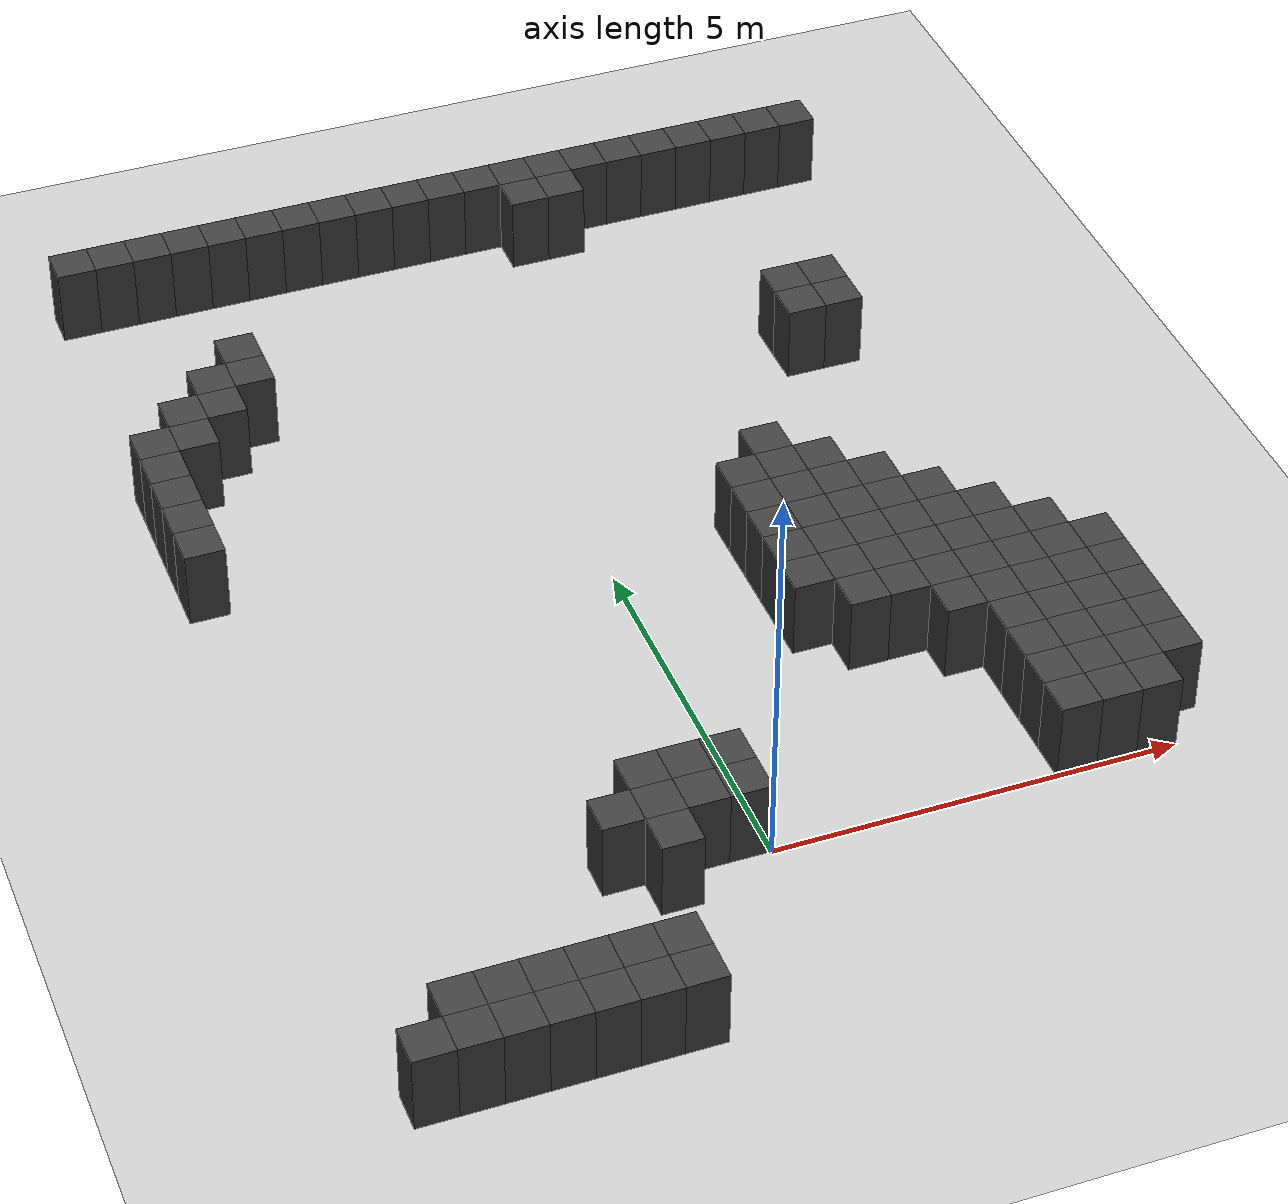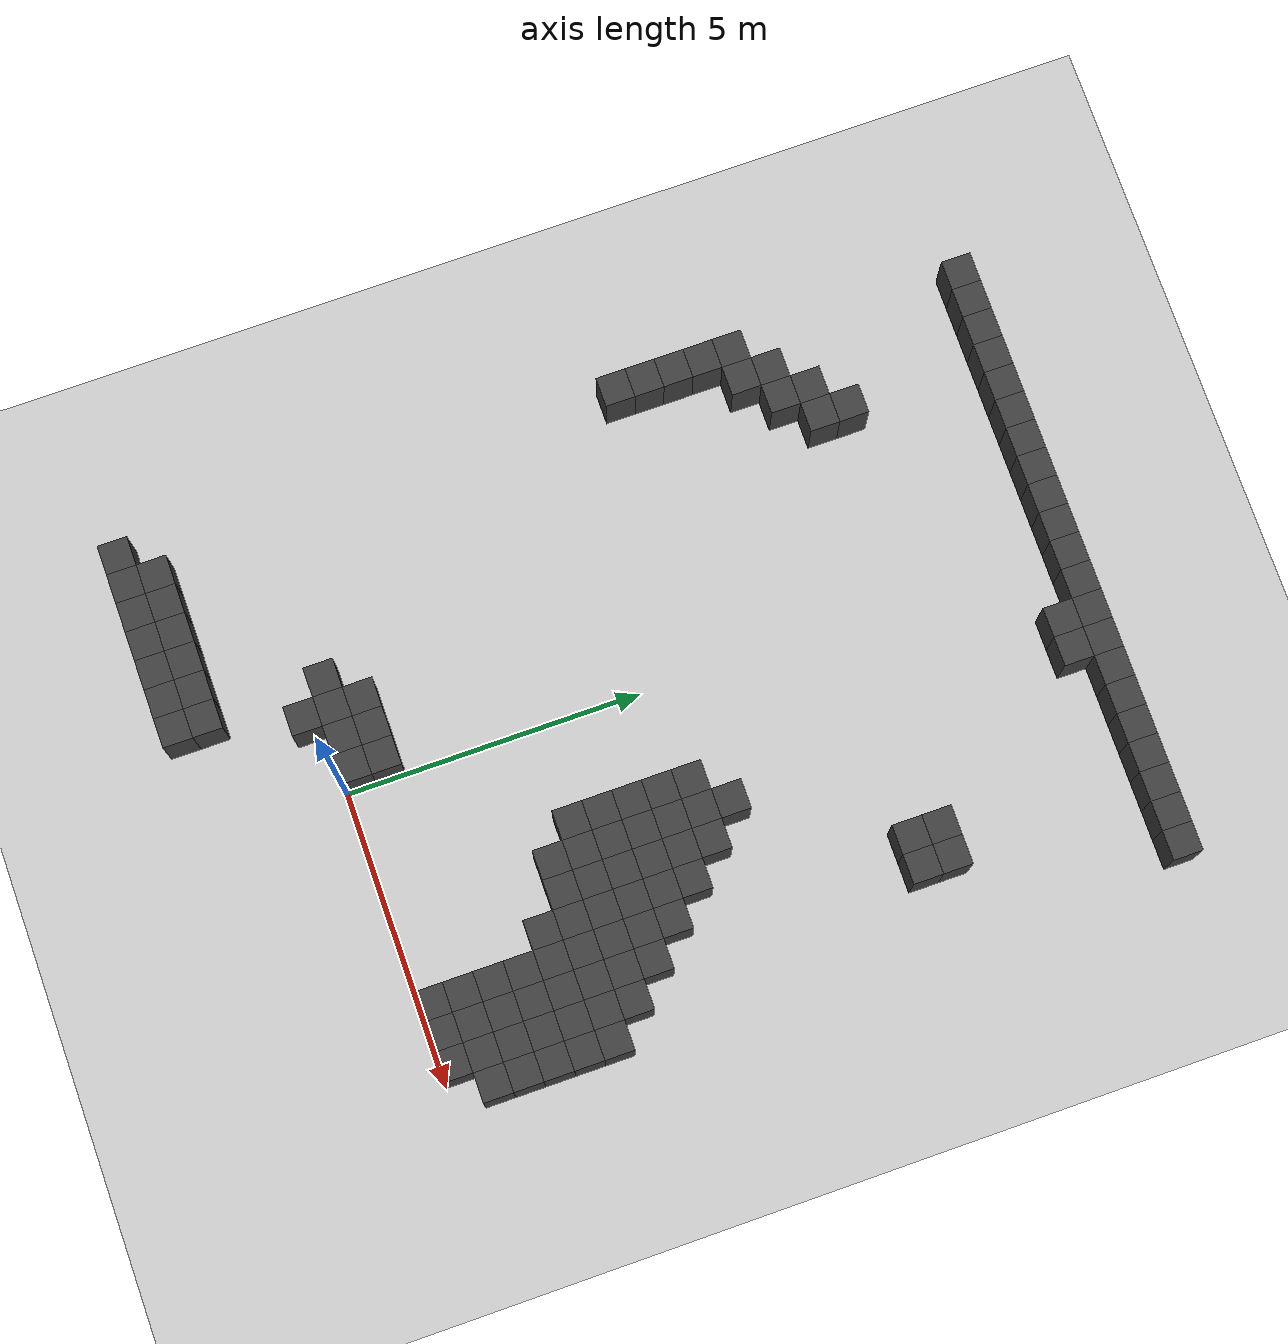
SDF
<sdf version="1.7">
 <world name="map_7219">
  <model name="ground_plane">
   <static>true</static>
   <link name="link">
    <collision name="collision">
     <geometry><plane><normal>0 0 1</normal><size>200 200</size></plane></geometry>
    </collision>
    <visual name="visual">
     <geometry><plane><normal>0 0 1</normal><size>200 200</size></plane></geometry>
     <material><ambient>0.8 0.8 0.8 1</ambient><diffuse>0.8 0.8 0.8 1</diffuse></material>
    </visual>
   </link>
  </model>
  <model name="maze_environment">
   <static>true</static>
   <link name="wall_15">
    <pose>-4.750 12.250 0.500 0 0 0</pose>
    <collision name="col"><geometry><box><size>0.5 0.5 1.0</size></box></geometry></collision>
    <visual name="vis">
     <geometry><box><size>0.5 0.5 1.0</size></box></geometry>
     <material><ambient>0.15 0.15 0.15 1</ambient><diffuse>0.25 0.25 0.25 1</diffuse></material>
    </visual>
   </link>
   <link name="wall_16">
    <pose>-4.250 12.250 0.500 0 0 0</pose>
    <collision name="col"><geometry><box><size>0.5 0.5 1.0</size></box></geometry></collision>
    <visual name="vis">
     <geometry><box><size>0.5 0.5 1.0</size></box></geometry>
     <material><ambient>0.15 0.15 0.15 1</ambient><diffuse>0.25 0.25 0.25 1</diffuse></material>
    </visual>
   </link>
   <link name="wall_17">
    <pose>-3.750 12.250 0.500 0 0 0</pose>
    <collision name="col"><geometry><box><size>0.5 0.5 1.0</size></box></geometry></collision>
    <visual name="vis">
     <geometry><box><size>0.5 0.5 1.0</size></box></geometry>
     <material><ambient>0.15 0.15 0.15 1</ambient><diffuse>0.25 0.25 0.25 1</diffuse></material>
    </visual>
   </link>
   <link name="wall_18">
    <pose>-3.250 12.250 0.500 0 0 0</pose>
    <collision name="col"><geometry><box><size>0.5 0.5 1.0</size></box></geometry></collision>
    <visual name="vis">
     <geometry><box><size>0.5 0.5 1.0</size></box></geometry>
     <material><ambient>0.15 0.15 0.15 1</ambient><diffuse>0.25 0.25 0.25 1</diffuse></material>
    </visual>
   </link>
   <link name="wall_19">
    <pose>-2.750 12.250 0.500 0 0 0</pose>
    <collision name="col"><geometry><box><size>0.5 0.5 1.0</size></box></geometry></collision>
    <visual name="vis">
     <geometry><box><size>0.5 0.5 1.0</size></box></geometry>
     <material><ambient>0.15 0.15 0.15 1</ambient><diffuse>0.25 0.25 0.25 1</diffuse></material>
    </visual>
   </link>
   <link name="wall_20">
    <pose>-2.250 12.250 0.500 0 0 0</pose>
    <collision name="col"><geometry><box><size>0.5 0.5 1.0</size></box></geometry></collision>
    <visual name="vis">
     <geometry><box><size>0.5 0.5 1.0</size></box></geometry>
     <material><ambient>0.15 0.15 0.15 1</ambient><diffuse>0.25 0.25 0.25 1</diffuse></material>
    </visual>
   </link>
   <link name="wall_21">
    <pose>-1.750 12.250 0.500 0 0 0</pose>
    <collision name="col"><geometry><box><size>0.5 0.5 1.0</size></box></geometry></collision>
    <visual name="vis">
     <geometry><box><size>0.5 0.5 1.0</size></box></geometry>
     <material><ambient>0.15 0.15 0.15 1</ambient><diffuse>0.25 0.25 0.25 1</diffuse></material>
    </visual>
   </link>
   <link name="wall_22">
    <pose>-1.250 12.250 0.500 0 0 0</pose>
    <collision name="col"><geometry><box><size>0.5 0.5 1.0</size></box></geometry></collision>
    <visual name="vis">
     <geometry><box><size>0.5 0.5 1.0</size></box></geometry>
     <material><ambient>0.15 0.15 0.15 1</ambient><diffuse>0.25 0.25 0.25 1</diffuse></material>
    </visual>
   </link>
   <link name="wall_23">
    <pose>-0.750 12.250 0.500 0 0 0</pose>
    <collision name="col"><geometry><box><size>0.5 0.5 1.0</size></box></geometry></collision>
    <visual name="vis">
     <geometry><box><size>0.5 0.5 1.0</size></box></geometry>
     <material><ambient>0.15 0.15 0.15 1</ambient><diffuse>0.25 0.25 0.25 1</diffuse></material>
    </visual>
   </link>
   <link name="wall_24">
    <pose>-0.250 12.250 0.500 0 0 0</pose>
    <collision name="col"><geometry><box><size>0.5 0.5 1.0</size></box></geometry></collision>
    <visual name="vis">
     <geometry><box><size>0.5 0.5 1.0</size></box></geometry>
     <material><ambient>0.15 0.15 0.15 1</ambient><diffuse>0.25 0.25 0.25 1</diffuse></material>
    </visual>
   </link>
   <link name="wall_25">
    <pose>0.250 12.250 0.500 0 0 0</pose>
    <collision name="col"><geometry><box><size>0.5 0.5 1.0</size></box></geometry></collision>
    <visual name="vis">
     <geometry><box><size>0.5 0.5 1.0</size></box></geometry>
     <material><ambient>0.15 0.15 0.15 1</ambient><diffuse>0.25 0.25 0.25 1</diffuse></material>
    </visual>
   </link>
   <link name="wall_26">
    <pose>0.750 12.250 0.500 0 0 0</pose>
    <collision name="col"><geometry><box><size>0.5 0.5 1.0</size></box></geometry></collision>
    <visual name="vis">
     <geometry><box><size>0.5 0.5 1.0</size></box></geometry>
     <material><ambient>0.15 0.15 0.15 1</ambient><diffuse>0.25 0.25 0.25 1</diffuse></material>
    </visual>
   </link>
   <link name="wall_27">
    <pose>1.250 12.250 0.500 0 0 0</pose>
    <collision name="col"><geometry><box><size>0.5 0.5 1.0</size></box></geometry></collision>
    <visual name="vis">
     <geometry><box><size>0.5 0.5 1.0</size></box></geometry>
     <material><ambient>0.15 0.15 0.15 1</ambient><diffuse>0.25 0.25 0.25 1</diffuse></material>
    </visual>
   </link>
   <link name="wall_28">
    <pose>1.750 12.250 0.500 0 0 0</pose>
    <collision name="col"><geometry><box><size>0.5 0.5 1.0</size></box></geometry></collision>
    <visual name="vis">
     <geometry><box><size>0.5 0.5 1.0</size></box></geometry>
     <material><ambient>0.15 0.15 0.15 1</ambient><diffuse>0.25 0.25 0.25 1</diffuse></material>
    </visual>
   </link>
   <link name="wall_29">
    <pose>2.250 12.250 0.500 0 0 0</pose>
    <collision name="col"><geometry><box><size>0.5 0.5 1.0</size></box></geometry></collision>
    <visual name="vis">
     <geometry><box><size>0.5 0.5 1.0</size></box></geometry>
     <material><ambient>0.15 0.15 0.15 1</ambient><diffuse>0.25 0.25 0.25 1</diffuse></material>
    </visual>
   </link>
   <link name="wall_30">
    <pose>2.750 12.250 0.500 0 0 0</pose>
    <collision name="col"><geometry><box><size>0.5 0.5 1.0</size></box></geometry></collision>
    <visual name="vis">
     <geometry><box><size>0.5 0.5 1.0</size></box></geometry>
     <material><ambient>0.15 0.15 0.15 1</ambient><diffuse>0.25 0.25 0.25 1</diffuse></material>
    </visual>
   </link>
   <link name="wall_31">
    <pose>3.250 12.250 0.500 0 0 0</pose>
    <collision name="col"><geometry><box><size>0.5 0.5 1.0</size></box></geometry></collision>
    <visual name="vis">
     <geometry><box><size>0.5 0.5 1.0</size></box></geometry>
     <material><ambient>0.15 0.15 0.15 1</ambient><diffuse>0.25 0.25 0.25 1</diffuse></material>
    </visual>
   </link>
   <link name="wall_32">
    <pose>3.750 12.250 0.500 0 0 0</pose>
    <collision name="col"><geometry><box><size>0.5 0.5 1.0</size></box></geometry></collision>
    <visual name="vis">
     <geometry><box><size>0.5 0.5 1.0</size></box></geometry>
     <material><ambient>0.15 0.15 0.15 1</ambient><diffuse>0.25 0.25 0.25 1</diffuse></material>
    </visual>
   </link>
   <link name="wall_33">
    <pose>4.250 12.250 0.500 0 0 0</pose>
    <collision name="col"><geometry><box><size>0.5 0.5 1.0</size></box></geometry></collision>
    <visual name="vis">
     <geometry><box><size>0.5 0.5 1.0</size></box></geometry>
     <material><ambient>0.15 0.15 0.15 1</ambient><diffuse>0.25 0.25 0.25 1</diffuse></material>
    </visual>
   </link>
   <link name="wall_34">
    <pose>4.750 12.250 0.500 0 0 0</pose>
    <collision name="col"><geometry><box><size>0.5 0.5 1.0</size></box></geometry></collision>
    <visual name="vis">
     <geometry><box><size>0.5 0.5 1.0</size></box></geometry>
     <material><ambient>0.15 0.15 0.15 1</ambient><diffuse>0.25 0.25 0.25 1</diffuse></material>
    </visual>
   </link>
   <link name="wall_35">
    <pose>5.250 12.250 0.500 0 0 0</pose>
    <collision name="col"><geometry><box><size>0.5 0.5 1.0</size></box></geometry></collision>
    <visual name="vis">
     <geometry><box><size>0.5 0.5 1.0</size></box></geometry>
     <material><ambient>0.15 0.15 0.15 1</ambient><diffuse>0.25 0.25 0.25 1</diffuse></material>
    </visual>
   </link>
   <link name="wall_57">
    <pose>1.250 11.750 0.500 0 0 0</pose>
    <collision name="col"><geometry><box><size>0.5 0.5 1.0</size></box></geometry></collision>
    <visual name="vis">
     <geometry><box><size>0.5 0.5 1.0</size></box></geometry>
     <material><ambient>0.15 0.15 0.15 1</ambient><diffuse>0.25 0.25 0.25 1</diffuse></material>
    </visual>
   </link>
   <link name="wall_58">
    <pose>1.750 11.750 0.500 0 0 0</pose>
    <collision name="col"><geometry><box><size>0.5 0.5 1.0</size></box></geometry></collision>
    <visual name="vis">
     <geometry><box><size>0.5 0.5 1.0</size></box></geometry>
     <material><ambient>0.15 0.15 0.15 1</ambient><diffuse>0.25 0.25 0.25 1</diffuse></material>
    </visual>
   </link>
   <link name="wall_85">
    <pose>-3.250 9.750 0.500 0 0 0</pose>
    <collision name="col"><geometry><box><size>0.5 0.5 1.0</size></box></geometry></collision>
    <visual name="vis">
     <geometry><box><size>0.5 0.5 1.0</size></box></geometry>
     <material><ambient>0.15 0.15 0.15 1</ambient><diffuse>0.25 0.25 0.25 1</diffuse></material>
    </visual>
   </link>
   <link name="wall_93">
    <pose>-3.750 9.250 0.500 0 0 0</pose>
    <collision name="col"><geometry><box><size>0.5 0.5 1.0</size></box></geometry></collision>
    <visual name="vis">
     <geometry><box><size>0.5 0.5 1.0</size></box></geometry>
     <material><ambient>0.15 0.15 0.15 1</ambient><diffuse>0.25 0.25 0.25 1</diffuse></material>
    </visual>
   </link>
   <link name="wall_94">
    <pose>-3.250 9.250 0.500 0 0 0</pose>
    <collision name="col"><geometry><box><size>0.5 0.5 1.0</size></box></geometry></collision>
    <visual name="vis">
     <geometry><box><size>0.5 0.5 1.0</size></box></geometry>
     <material><ambient>0.15 0.15 0.15 1</ambient><diffuse>0.25 0.25 0.25 1</diffuse></material>
    </visual>
   </link>
   <link name="wall_102">
    <pose>-4.250 8.750 0.500 0 0 0</pose>
    <collision name="col"><geometry><box><size>0.5 0.5 1.0</size></box></geometry></collision>
    <visual name="vis">
     <geometry><box><size>0.5 0.5 1.0</size></box></geometry>
     <material><ambient>0.15 0.15 0.15 1</ambient><diffuse>0.25 0.25 0.25 1</diffuse></material>
    </visual>
   </link>
   <link name="wall_103">
    <pose>-3.750 8.750 0.500 0 0 0</pose>
    <collision name="col"><geometry><box><size>0.5 0.5 1.0</size></box></geometry></collision>
    <visual name="vis">
     <geometry><box><size>0.5 0.5 1.0</size></box></geometry>
     <material><ambient>0.15 0.15 0.15 1</ambient><diffuse>0.25 0.25 0.25 1</diffuse></material>
    </visual>
   </link>
   <link name="wall_104">
    <pose>3.750 8.750 0.500 0 0 0</pose>
    <collision name="col"><geometry><box><size>0.5 0.5 1.0</size></box></geometry></collision>
    <visual name="vis">
     <geometry><box><size>0.5 0.5 1.0</size></box></geometry>
     <material><ambient>0.15 0.15 0.15 1</ambient><diffuse>0.25 0.25 0.25 1</diffuse></material>
    </visual>
   </link>
   <link name="wall_105">
    <pose>4.250 8.750 0.500 0 0 0</pose>
    <collision name="col"><geometry><box><size>0.5 0.5 1.0</size></box></geometry></collision>
    <visual name="vis">
     <geometry><box><size>0.5 0.5 1.0</size></box></geometry>
     <material><ambient>0.15 0.15 0.15 1</ambient><diffuse>0.25 0.25 0.25 1</diffuse></material>
    </visual>
   </link>
   <link name="wall_114">
    <pose>-4.750 8.250 0.500 0 0 0</pose>
    <collision name="col"><geometry><box><size>0.5 0.5 1.0</size></box></geometry></collision>
    <visual name="vis">
     <geometry><box><size>0.5 0.5 1.0</size></box></geometry>
     <material><ambient>0.15 0.15 0.15 1</ambient><diffuse>0.25 0.25 0.25 1</diffuse></material>
    </visual>
   </link>
   <link name="wall_115">
    <pose>-4.250 8.250 0.500 0 0 0</pose>
    <collision name="col"><geometry><box><size>0.5 0.5 1.0</size></box></geometry></collision>
    <visual name="vis">
     <geometry><box><size>0.5 0.5 1.0</size></box></geometry>
     <material><ambient>0.15 0.15 0.15 1</ambient><diffuse>0.25 0.25 0.25 1</diffuse></material>
    </visual>
   </link>
   <link name="wall_116">
    <pose>3.750 8.250 0.500 0 0 0</pose>
    <collision name="col"><geometry><box><size>0.5 0.5 1.0</size></box></geometry></collision>
    <visual name="vis">
     <geometry><box><size>0.5 0.5 1.0</size></box></geometry>
     <material><ambient>0.15 0.15 0.15 1</ambient><diffuse>0.25 0.25 0.25 1</diffuse></material>
    </visual>
   </link>
   <link name="wall_117">
    <pose>4.250 8.250 0.500 0 0 0</pose>
    <collision name="col"><geometry><box><size>0.5 0.5 1.0</size></box></geometry></collision>
    <visual name="vis">
     <geometry><box><size>0.5 0.5 1.0</size></box></geometry>
     <material><ambient>0.15 0.15 0.15 1</ambient><diffuse>0.25 0.25 0.25 1</diffuse></material>
    </visual>
   </link>
   <link name="wall_127">
    <pose>-4.750 7.750 0.500 0 0 0</pose>
    <collision name="col"><geometry><box><size>0.5 0.5 1.0</size></box></geometry></collision>
    <visual name="vis">
     <geometry><box><size>0.5 0.5 1.0</size></box></geometry>
     <material><ambient>0.15 0.15 0.15 1</ambient><diffuse>0.25 0.25 0.25 1</diffuse></material>
    </visual>
   </link>
   <link name="wall_139">
    <pose>-4.750 7.250 0.500 0 0 0</pose>
    <collision name="col"><geometry><box><size>0.5 0.5 1.0</size></box></geometry></collision>
    <visual name="vis">
     <geometry><box><size>0.5 0.5 1.0</size></box></geometry>
     <material><ambient>0.15 0.15 0.15 1</ambient><diffuse>0.25 0.25 0.25 1</diffuse></material>
    </visual>
   </link>
   <link name="wall_150">
    <pose>-4.750 6.750 0.500 0 0 0</pose>
    <collision name="col"><geometry><box><size>0.5 0.5 1.0</size></box></geometry></collision>
    <visual name="vis">
     <geometry><box><size>0.5 0.5 1.0</size></box></geometry>
     <material><ambient>0.15 0.15 0.15 1</ambient><diffuse>0.25 0.25 0.25 1</diffuse></material>
    </visual>
   </link>
   <link name="wall_163">
    <pose>-4.750 6.250 0.500 0 0 0</pose>
    <collision name="col"><geometry><box><size>0.5 0.5 1.0</size></box></geometry></collision>
    <visual name="vis">
     <geometry><box><size>0.5 0.5 1.0</size></box></geometry>
     <material><ambient>0.15 0.15 0.15 1</ambient><diffuse>0.25 0.25 0.25 1</diffuse></material>
    </visual>
   </link>
   <link name="wall_177">
    <pose>2.250 5.750 0.500 0 0 0</pose>
    <collision name="col"><geometry><box><size>0.5 0.5 1.0</size></box></geometry></collision>
    <visual name="vis">
     <geometry><box><size>0.5 0.5 1.0</size></box></geometry>
     <material><ambient>0.15 0.15 0.15 1</ambient><diffuse>0.25 0.25 0.25 1</diffuse></material>
    </visual>
   </link>
   <link name="wall_190">
    <pose>1.750 5.250 0.500 0 0 0</pose>
    <collision name="col"><geometry><box><size>0.5 0.5 1.0</size></box></geometry></collision>
    <visual name="vis">
     <geometry><box><size>0.5 0.5 1.0</size></box></geometry>
     <material><ambient>0.15 0.15 0.15 1</ambient><diffuse>0.25 0.25 0.25 1</diffuse></material>
    </visual>
   </link>
   <link name="wall_191">
    <pose>2.250 5.250 0.500 0 0 0</pose>
    <collision name="col"><geometry><box><size>0.5 0.5 1.0</size></box></geometry></collision>
    <visual name="vis">
     <geometry><box><size>0.5 0.5 1.0</size></box></geometry>
     <material><ambient>0.15 0.15 0.15 1</ambient><diffuse>0.25 0.25 0.25 1</diffuse></material>
    </visual>
   </link>
   <link name="wall_192">
    <pose>2.750 5.250 0.500 0 0 0</pose>
    <collision name="col"><geometry><box><size>0.5 0.5 1.0</size></box></geometry></collision>
    <visual name="vis">
     <geometry><box><size>0.5 0.5 1.0</size></box></geometry>
     <material><ambient>0.15 0.15 0.15 1</ambient><diffuse>0.25 0.25 0.25 1</diffuse></material>
    </visual>
   </link>
   <link name="wall_206">
    <pose>1.750 4.750 0.500 0 0 0</pose>
    <collision name="col"><geometry><box><size>0.5 0.5 1.0</size></box></geometry></collision>
    <visual name="vis">
     <geometry><box><size>0.5 0.5 1.0</size></box></geometry>
     <material><ambient>0.15 0.15 0.15 1</ambient><diffuse>0.25 0.25 0.25 1</diffuse></material>
    </visual>
   </link>
   <link name="wall_207">
    <pose>2.250 4.750 0.500 0 0 0</pose>
    <collision name="col"><geometry><box><size>0.5 0.5 1.0</size></box></geometry></collision>
    <visual name="vis">
     <geometry><box><size>0.5 0.5 1.0</size></box></geometry>
     <material><ambient>0.15 0.15 0.15 1</ambient><diffuse>0.25 0.25 0.25 1</diffuse></material>
    </visual>
   </link>
   <link name="wall_208">
    <pose>2.750 4.750 0.500 0 0 0</pose>
    <collision name="col"><geometry><box><size>0.5 0.5 1.0</size></box></geometry></collision>
    <visual name="vis">
     <geometry><box><size>0.5 0.5 1.0</size></box></geometry>
     <material><ambient>0.15 0.15 0.15 1</ambient><diffuse>0.25 0.25 0.25 1</diffuse></material>
    </visual>
   </link>
   <link name="wall_209">
    <pose>3.250 4.750 0.500 0 0 0</pose>
    <collision name="col"><geometry><box><size>0.5 0.5 1.0</size></box></geometry></collision>
    <visual name="vis">
     <geometry><box><size>0.5 0.5 1.0</size></box></geometry>
     <material><ambient>0.15 0.15 0.15 1</ambient><diffuse>0.25 0.25 0.25 1</diffuse></material>
    </visual>
   </link>
   <link name="wall_224">
    <pose>1.750 4.250 0.500 0 0 0</pose>
    <collision name="col"><geometry><box><size>0.5 0.5 1.0</size></box></geometry></collision>
    <visual name="vis">
     <geometry><box><size>0.5 0.5 1.0</size></box></geometry>
     <material><ambient>0.15 0.15 0.15 1</ambient><diffuse>0.25 0.25 0.25 1</diffuse></material>
    </visual>
   </link>
   <link name="wall_225">
    <pose>2.250 4.250 0.500 0 0 0</pose>
    <collision name="col"><geometry><box><size>0.5 0.5 1.0</size></box></geometry></collision>
    <visual name="vis">
     <geometry><box><size>0.5 0.5 1.0</size></box></geometry>
     <material><ambient>0.15 0.15 0.15 1</ambient><diffuse>0.25 0.25 0.25 1</diffuse></material>
    </visual>
   </link>
   <link name="wall_226">
    <pose>2.750 4.250 0.500 0 0 0</pose>
    <collision name="col"><geometry><box><size>0.5 0.5 1.0</size></box></geometry></collision>
    <visual name="vis">
     <geometry><box><size>0.5 0.5 1.0</size></box></geometry>
     <material><ambient>0.15 0.15 0.15 1</ambient><diffuse>0.25 0.25 0.25 1</diffuse></material>
    </visual>
   </link>
   <link name="wall_227">
    <pose>3.250 4.250 0.500 0 0 0</pose>
    <collision name="col"><geometry><box><size>0.5 0.5 1.0</size></box></geometry></collision>
    <visual name="vis">
     <geometry><box><size>0.5 0.5 1.0</size></box></geometry>
     <material><ambient>0.15 0.15 0.15 1</ambient><diffuse>0.25 0.25 0.25 1</diffuse></material>
    </visual>
   </link>
   <link name="wall_228">
    <pose>3.750 4.250 0.500 0 0 0</pose>
    <collision name="col"><geometry><box><size>0.5 0.5 1.0</size></box></geometry></collision>
    <visual name="vis">
     <geometry><box><size>0.5 0.5 1.0</size></box></geometry>
     <material><ambient>0.15 0.15 0.15 1</ambient><diffuse>0.25 0.25 0.25 1</diffuse></material>
    </visual>
   </link>
   <link name="wall_242">
    <pose>1.750 3.750 0.500 0 0 0</pose>
    <collision name="col"><geometry><box><size>0.5 0.5 1.0</size></box></geometry></collision>
    <visual name="vis">
     <geometry><box><size>0.5 0.5 1.0</size></box></geometry>
     <material><ambient>0.15 0.15 0.15 1</ambient><diffuse>0.25 0.25 0.25 1</diffuse></material>
    </visual>
   </link>
   <link name="wall_243">
    <pose>2.250 3.750 0.500 0 0 0</pose>
    <collision name="col"><geometry><box><size>0.5 0.5 1.0</size></box></geometry></collision>
    <visual name="vis">
     <geometry><box><size>0.5 0.5 1.0</size></box></geometry>
     <material><ambient>0.15 0.15 0.15 1</ambient><diffuse>0.25 0.25 0.25 1</diffuse></material>
    </visual>
   </link>
   <link name="wall_244">
    <pose>2.750 3.750 0.500 0 0 0</pose>
    <collision name="col"><geometry><box><size>0.5 0.5 1.0</size></box></geometry></collision>
    <visual name="vis">
     <geometry><box><size>0.5 0.5 1.0</size></box></geometry>
     <material><ambient>0.15 0.15 0.15 1</ambient><diffuse>0.25 0.25 0.25 1</diffuse></material>
    </visual>
   </link>
   <link name="wall_245">
    <pose>3.250 3.750 0.500 0 0 0</pose>
    <collision name="col"><geometry><box><size>0.5 0.5 1.0</size></box></geometry></collision>
    <visual name="vis">
     <geometry><box><size>0.5 0.5 1.0</size></box></geometry>
     <material><ambient>0.15 0.15 0.15 1</ambient><diffuse>0.25 0.25 0.25 1</diffuse></material>
    </visual>
   </link>
   <link name="wall_246">
    <pose>3.750 3.750 0.500 0 0 0</pose>
    <collision name="col"><geometry><box><size>0.5 0.5 1.0</size></box></geometry></collision>
    <visual name="vis">
     <geometry><box><size>0.5 0.5 1.0</size></box></geometry>
     <material><ambient>0.15 0.15 0.15 1</ambient><diffuse>0.25 0.25 0.25 1</diffuse></material>
    </visual>
   </link>
   <link name="wall_247">
    <pose>4.250 3.750 0.500 0 0 0</pose>
    <collision name="col"><geometry><box><size>0.5 0.5 1.0</size></box></geometry></collision>
    <visual name="vis">
     <geometry><box><size>0.5 0.5 1.0</size></box></geometry>
     <material><ambient>0.15 0.15 0.15 1</ambient><diffuse>0.25 0.25 0.25 1</diffuse></material>
    </visual>
   </link>
   <link name="wall_260">
    <pose>1.750 3.250 0.500 0 0 0</pose>
    <collision name="col"><geometry><box><size>0.5 0.5 1.0</size></box></geometry></collision>
    <visual name="vis">
     <geometry><box><size>0.5 0.5 1.0</size></box></geometry>
     <material><ambient>0.15 0.15 0.15 1</ambient><diffuse>0.25 0.25 0.25 1</diffuse></material>
    </visual>
   </link>
   <link name="wall_261">
    <pose>2.250 3.250 0.500 0 0 0</pose>
    <collision name="col"><geometry><box><size>0.5 0.5 1.0</size></box></geometry></collision>
    <visual name="vis">
     <geometry><box><size>0.5 0.5 1.0</size></box></geometry>
     <material><ambient>0.15 0.15 0.15 1</ambient><diffuse>0.25 0.25 0.25 1</diffuse></material>
    </visual>
   </link>
   <link name="wall_262">
    <pose>2.750 3.250 0.500 0 0 0</pose>
    <collision name="col"><geometry><box><size>0.5 0.5 1.0</size></box></geometry></collision>
    <visual name="vis">
     <geometry><box><size>0.5 0.5 1.0</size></box></geometry>
     <material><ambient>0.15 0.15 0.15 1</ambient><diffuse>0.25 0.25 0.25 1</diffuse></material>
    </visual>
   </link>
   <link name="wall_263">
    <pose>3.250 3.250 0.500 0 0 0</pose>
    <collision name="col"><geometry><box><size>0.5 0.5 1.0</size></box></geometry></collision>
    <visual name="vis">
     <geometry><box><size>0.5 0.5 1.0</size></box></geometry>
     <material><ambient>0.15 0.15 0.15 1</ambient><diffuse>0.25 0.25 0.25 1</diffuse></material>
    </visual>
   </link>
   <link name="wall_264">
    <pose>3.750 3.250 0.500 0 0 0</pose>
    <collision name="col"><geometry><box><size>0.5 0.5 1.0</size></box></geometry></collision>
    <visual name="vis">
     <geometry><box><size>0.5 0.5 1.0</size></box></geometry>
     <material><ambient>0.15 0.15 0.15 1</ambient><diffuse>0.25 0.25 0.25 1</diffuse></material>
    </visual>
   </link>
   <link name="wall_265">
    <pose>4.250 3.250 0.500 0 0 0</pose>
    <collision name="col"><geometry><box><size>0.5 0.5 1.0</size></box></geometry></collision>
    <visual name="vis">
     <geometry><box><size>0.5 0.5 1.0</size></box></geometry>
     <material><ambient>0.15 0.15 0.15 1</ambient><diffuse>0.25 0.25 0.25 1</diffuse></material>
    </visual>
   </link>
   <link name="wall_266">
    <pose>4.750 3.250 0.500 0 0 0</pose>
    <collision name="col"><geometry><box><size>0.5 0.5 1.0</size></box></geometry></collision>
    <visual name="vis">
     <geometry><box><size>0.5 0.5 1.0</size></box></geometry>
     <material><ambient>0.15 0.15 0.15 1</ambient><diffuse>0.25 0.25 0.25 1</diffuse></material>
    </visual>
   </link>
   <link name="wall_276">
    <pose>2.250 2.750 0.500 0 0 0</pose>
    <collision name="col"><geometry><box><size>0.5 0.5 1.0</size></box></geometry></collision>
    <visual name="vis">
     <geometry><box><size>0.5 0.5 1.0</size></box></geometry>
     <material><ambient>0.15 0.15 0.15 1</ambient><diffuse>0.25 0.25 0.25 1</diffuse></material>
    </visual>
   </link>
   <link name="wall_277">
    <pose>2.750 2.750 0.500 0 0 0</pose>
    <collision name="col"><geometry><box><size>0.5 0.5 1.0</size></box></geometry></collision>
    <visual name="vis">
     <geometry><box><size>0.5 0.5 1.0</size></box></geometry>
     <material><ambient>0.15 0.15 0.15 1</ambient><diffuse>0.25 0.25 0.25 1</diffuse></material>
    </visual>
   </link>
   <link name="wall_278">
    <pose>3.250 2.750 0.500 0 0 0</pose>
    <collision name="col"><geometry><box><size>0.5 0.5 1.0</size></box></geometry></collision>
    <visual name="vis">
     <geometry><box><size>0.5 0.5 1.0</size></box></geometry>
     <material><ambient>0.15 0.15 0.15 1</ambient><diffuse>0.25 0.25 0.25 1</diffuse></material>
    </visual>
   </link>
   <link name="wall_279">
    <pose>3.750 2.750 0.500 0 0 0</pose>
    <collision name="col"><geometry><box><size>0.5 0.5 1.0</size></box></geometry></collision>
    <visual name="vis">
     <geometry><box><size>0.5 0.5 1.0</size></box></geometry>
     <material><ambient>0.15 0.15 0.15 1</ambient><diffuse>0.25 0.25 0.25 1</diffuse></material>
    </visual>
   </link>
   <link name="wall_280">
    <pose>4.250 2.750 0.500 0 0 0</pose>
    <collision name="col"><geometry><box><size>0.5 0.5 1.0</size></box></geometry></collision>
    <visual name="vis">
     <geometry><box><size>0.5 0.5 1.0</size></box></geometry>
     <material><ambient>0.15 0.15 0.15 1</ambient><diffuse>0.25 0.25 0.25 1</diffuse></material>
    </visual>
   </link>
   <link name="wall_281">
    <pose>4.750 2.750 0.500 0 0 0</pose>
    <collision name="col"><geometry><box><size>0.5 0.5 1.0</size></box></geometry></collision>
    <visual name="vis">
     <geometry><box><size>0.5 0.5 1.0</size></box></geometry>
     <material><ambient>0.15 0.15 0.15 1</ambient><diffuse>0.25 0.25 0.25 1</diffuse></material>
    </visual>
   </link>
   <link name="wall_282">
    <pose>5.250 2.750 0.500 0 0 0</pose>
    <collision name="col"><geometry><box><size>0.5 0.5 1.0</size></box></geometry></collision>
    <visual name="vis">
     <geometry><box><size>0.5 0.5 1.0</size></box></geometry>
     <material><ambient>0.15 0.15 0.15 1</ambient><diffuse>0.25 0.25 0.25 1</diffuse></material>
    </visual>
   </link>
   <link name="wall_291">
    <pose>3.250 2.250 0.500 0 0 0</pose>
    <collision name="col"><geometry><box><size>0.5 0.5 1.0</size></box></geometry></collision>
    <visual name="vis">
     <geometry><box><size>0.5 0.5 1.0</size></box></geometry>
     <material><ambient>0.15 0.15 0.15 1</ambient><diffuse>0.25 0.25 0.25 1</diffuse></material>
    </visual>
   </link>
   <link name="wall_292">
    <pose>3.750 2.250 0.500 0 0 0</pose>
    <collision name="col"><geometry><box><size>0.5 0.5 1.0</size></box></geometry></collision>
    <visual name="vis">
     <geometry><box><size>0.5 0.5 1.0</size></box></geometry>
     <material><ambient>0.15 0.15 0.15 1</ambient><diffuse>0.25 0.25 0.25 1</diffuse></material>
    </visual>
   </link>
   <link name="wall_293">
    <pose>4.250 2.250 0.500 0 0 0</pose>
    <collision name="col"><geometry><box><size>0.5 0.5 1.0</size></box></geometry></collision>
    <visual name="vis">
     <geometry><box><size>0.5 0.5 1.0</size></box></geometry>
     <material><ambient>0.15 0.15 0.15 1</ambient><diffuse>0.25 0.25 0.25 1</diffuse></material>
    </visual>
   </link>
   <link name="wall_294">
    <pose>4.750 2.250 0.500 0 0 0</pose>
    <collision name="col"><geometry><box><size>0.5 0.5 1.0</size></box></geometry></collision>
    <visual name="vis">
     <geometry><box><size>0.5 0.5 1.0</size></box></geometry>
     <material><ambient>0.15 0.15 0.15 1</ambient><diffuse>0.25 0.25 0.25 1</diffuse></material>
    </visual>
   </link>
   <link name="wall_295">
    <pose>5.250 2.250 0.500 0 0 0</pose>
    <collision name="col"><geometry><box><size>0.5 0.5 1.0</size></box></geometry></collision>
    <visual name="vis">
     <geometry><box><size>0.5 0.5 1.0</size></box></geometry>
     <material><ambient>0.15 0.15 0.15 1</ambient><diffuse>0.25 0.25 0.25 1</diffuse></material>
    </visual>
   </link>
   <link name="wall_308">
    <pose>3.750 1.750 0.500 0 0 0</pose>
    <collision name="col"><geometry><box><size>0.5 0.5 1.0</size></box></geometry></collision>
    <visual name="vis">
     <geometry><box><size>0.5 0.5 1.0</size></box></geometry>
     <material><ambient>0.15 0.15 0.15 1</ambient><diffuse>0.25 0.25 0.25 1</diffuse></material>
    </visual>
   </link>
   <link name="wall_309">
    <pose>4.250 1.750 0.500 0 0 0</pose>
    <collision name="col"><geometry><box><size>0.5 0.5 1.0</size></box></geometry></collision>
    <visual name="vis">
     <geometry><box><size>0.5 0.5 1.0</size></box></geometry>
     <material><ambient>0.15 0.15 0.15 1</ambient><diffuse>0.25 0.25 0.25 1</diffuse></material>
    </visual>
   </link>
   <link name="wall_310">
    <pose>4.750 1.750 0.500 0 0 0</pose>
    <collision name="col"><geometry><box><size>0.5 0.5 1.0</size></box></geometry></collision>
    <visual name="vis">
     <geometry><box><size>0.5 0.5 1.0</size></box></geometry>
     <material><ambient>0.15 0.15 0.15 1</ambient><diffuse>0.25 0.25 0.25 1</diffuse></material>
    </visual>
   </link>
   <link name="wall_311">
    <pose>5.250 1.750 0.500 0 0 0</pose>
    <collision name="col"><geometry><box><size>0.5 0.5 1.0</size></box></geometry></collision>
    <visual name="vis">
     <geometry><box><size>0.5 0.5 1.0</size></box></geometry>
     <material><ambient>0.15 0.15 0.15 1</ambient><diffuse>0.25 0.25 0.25 1</diffuse></material>
    </visual>
   </link>
   <link name="wall_328">
    <pose>3.750 1.250 0.500 0 0 0</pose>
    <collision name="col"><geometry><box><size>0.5 0.5 1.0</size></box></geometry></collision>
    <visual name="vis">
     <geometry><box><size>0.5 0.5 1.0</size></box></geometry>
     <material><ambient>0.15 0.15 0.15 1</ambient><diffuse>0.25 0.25 0.25 1</diffuse></material>
    </visual>
   </link>
   <link name="wall_329">
    <pose>4.250 1.250 0.500 0 0 0</pose>
    <collision name="col"><geometry><box><size>0.5 0.5 1.0</size></box></geometry></collision>
    <visual name="vis">
     <geometry><box><size>0.5 0.5 1.0</size></box></geometry>
     <material><ambient>0.15 0.15 0.15 1</ambient><diffuse>0.25 0.25 0.25 1</diffuse></material>
    </visual>
   </link>
   <link name="wall_330">
    <pose>4.750 1.250 0.500 0 0 0</pose>
    <collision name="col"><geometry><box><size>0.5 0.5 1.0</size></box></geometry></collision>
    <visual name="vis">
     <geometry><box><size>0.5 0.5 1.0</size></box></geometry>
     <material><ambient>0.15 0.15 0.15 1</ambient><diffuse>0.25 0.25 0.25 1</diffuse></material>
    </visual>
   </link>
   <link name="wall_331">
    <pose>5.250 1.250 0.500 0 0 0</pose>
    <collision name="col"><geometry><box><size>0.5 0.5 1.0</size></box></geometry></collision>
    <visual name="vis">
     <geometry><box><size>0.5 0.5 1.0</size></box></geometry>
     <material><ambient>0.15 0.15 0.15 1</ambient><diffuse>0.25 0.25 0.25 1</diffuse></material>
    </visual>
   </link>
   <link name="wall_350">
    <pose>-1.250 0.750 0.500 0 0 0</pose>
    <collision name="col"><geometry><box><size>0.5 0.5 1.0</size></box></geometry></collision>
    <visual name="vis">
     <geometry><box><size>0.5 0.5 1.0</size></box></geometry>
     <material><ambient>0.15 0.15 0.15 1</ambient><diffuse>0.25 0.25 0.25 1</diffuse></material>
    </visual>
   </link>
   <link name="wall_351">
    <pose>-0.750 0.750 0.500 0 0 0</pose>
    <collision name="col"><geometry><box><size>0.5 0.5 1.0</size></box></geometry></collision>
    <visual name="vis">
     <geometry><box><size>0.5 0.5 1.0</size></box></geometry>
     <material><ambient>0.15 0.15 0.15 1</ambient><diffuse>0.25 0.25 0.25 1</diffuse></material>
    </visual>
   </link>
   <link name="wall_352">
    <pose>-0.250 0.750 0.500 0 0 0</pose>
    <collision name="col"><geometry><box><size>0.5 0.5 1.0</size></box></geometry></collision>
    <visual name="vis">
     <geometry><box><size>0.5 0.5 1.0</size></box></geometry>
     <material><ambient>0.15 0.15 0.15 1</ambient><diffuse>0.25 0.25 0.25 1</diffuse></material>
    </visual>
   </link>
   <link name="wall_353">
    <pose>3.750 0.750 0.500 0 0 0</pose>
    <collision name="col"><geometry><box><size>0.5 0.5 1.0</size></box></geometry></collision>
    <visual name="vis">
     <geometry><box><size>0.5 0.5 1.0</size></box></geometry>
     <material><ambient>0.15 0.15 0.15 1</ambient><diffuse>0.25 0.25 0.25 1</diffuse></material>
    </visual>
   </link>
   <link name="wall_354">
    <pose>4.250 0.750 0.500 0 0 0</pose>
    <collision name="col"><geometry><box><size>0.5 0.5 1.0</size></box></geometry></collision>
    <visual name="vis">
     <geometry><box><size>0.5 0.5 1.0</size></box></geometry>
     <material><ambient>0.15 0.15 0.15 1</ambient><diffuse>0.25 0.25 0.25 1</diffuse></material>
    </visual>
   </link>
   <link name="wall_355">
    <pose>4.750 0.750 0.500 0 0 0</pose>
    <collision name="col"><geometry><box><size>0.5 0.5 1.0</size></box></geometry></collision>
    <visual name="vis">
     <geometry><box><size>0.5 0.5 1.0</size></box></geometry>
     <material><ambient>0.15 0.15 0.15 1</ambient><diffuse>0.25 0.25 0.25 1</diffuse></material>
    </visual>
   </link>
   <link name="wall_356">
    <pose>5.250 0.750 0.500 0 0 0</pose>
    <collision name="col"><geometry><box><size>0.5 0.5 1.0</size></box></geometry></collision>
    <visual name="vis">
     <geometry><box><size>0.5 0.5 1.0</size></box></geometry>
     <material><ambient>0.15 0.15 0.15 1</ambient><diffuse>0.25 0.25 0.25 1</diffuse></material>
    </visual>
   </link>
   <link name="wall_373">
    <pose>-1.750 0.250 0.500 0 0 0</pose>
    <collision name="col"><geometry><box><size>0.5 0.5 1.0</size></box></geometry></collision>
    <visual name="vis">
     <geometry><box><size>0.5 0.5 1.0</size></box></geometry>
     <material><ambient>0.15 0.15 0.15 1</ambient><diffuse>0.25 0.25 0.25 1</diffuse></material>
    </visual>
   </link>
   <link name="wall_374">
    <pose>-1.250 0.250 0.500 0 0 0</pose>
    <collision name="col"><geometry><box><size>0.5 0.5 1.0</size></box></geometry></collision>
    <visual name="vis">
     <geometry><box><size>0.5 0.5 1.0</size></box></geometry>
     <material><ambient>0.15 0.15 0.15 1</ambient><diffuse>0.25 0.25 0.25 1</diffuse></material>
    </visual>
   </link>
   <link name="wall_375">
    <pose>-0.750 0.250 0.500 0 0 0</pose>
    <collision name="col"><geometry><box><size>0.5 0.5 1.0</size></box></geometry></collision>
    <visual name="vis">
     <geometry><box><size>0.5 0.5 1.0</size></box></geometry>
     <material><ambient>0.15 0.15 0.15 1</ambient><diffuse>0.25 0.25 0.25 1</diffuse></material>
    </visual>
   </link>
   <link name="wall_376">
    <pose>-0.250 0.250 0.500 0 0 0</pose>
    <collision name="col"><geometry><box><size>0.5 0.5 1.0</size></box></geometry></collision>
    <visual name="vis">
     <geometry><box><size>0.5 0.5 1.0</size></box></geometry>
     <material><ambient>0.15 0.15 0.15 1</ambient><diffuse>0.25 0.25 0.25 1</diffuse></material>
    </visual>
   </link>
   <link name="wall_377">
    <pose>3.750 0.250 0.500 0 0 0</pose>
    <collision name="col"><geometry><box><size>0.5 0.5 1.0</size></box></geometry></collision>
    <visual name="vis">
     <geometry><box><size>0.5 0.5 1.0</size></box></geometry>
     <material><ambient>0.15 0.15 0.15 1</ambient><diffuse>0.25 0.25 0.25 1</diffuse></material>
    </visual>
   </link>
   <link name="wall_378">
    <pose>4.250 0.250 0.500 0 0 0</pose>
    <collision name="col"><geometry><box><size>0.5 0.5 1.0</size></box></geometry></collision>
    <visual name="vis">
     <geometry><box><size>0.5 0.5 1.0</size></box></geometry>
     <material><ambient>0.15 0.15 0.15 1</ambient><diffuse>0.25 0.25 0.25 1</diffuse></material>
    </visual>
   </link>
   <link name="wall_379">
    <pose>4.750 0.250 0.500 0 0 0</pose>
    <collision name="col"><geometry><box><size>0.5 0.5 1.0</size></box></geometry></collision>
    <visual name="vis">
     <geometry><box><size>0.5 0.5 1.0</size></box></geometry>
     <material><ambient>0.15 0.15 0.15 1</ambient><diffuse>0.25 0.25 0.25 1</diffuse></material>
    </visual>
   </link>
   <link name="wall_393">
    <pose>-1.250 -0.250 0.500 0 0 0</pose>
    <collision name="col"><geometry><box><size>0.5 0.5 1.0</size></box></geometry></collision>
    <visual name="vis">
     <geometry><box><size>0.5 0.5 1.0</size></box></geometry>
     <material><ambient>0.15 0.15 0.15 1</ambient><diffuse>0.25 0.25 0.25 1</diffuse></material>
    </visual>
   </link>
   <link name="wall_413">
    <pose>-4.250 -1.750 0.500 0 0 0</pose>
    <collision name="col"><geometry><box><size>0.5 0.5 1.0</size></box></geometry></collision>
    <visual name="vis">
     <geometry><box><size>0.5 0.5 1.0</size></box></geometry>
     <material><ambient>0.15 0.15 0.15 1</ambient><diffuse>0.25 0.25 0.25 1</diffuse></material>
    </visual>
   </link>
   <link name="wall_414">
    <pose>-3.750 -1.750 0.500 0 0 0</pose>
    <collision name="col"><geometry><box><size>0.5 0.5 1.0</size></box></geometry></collision>
    <visual name="vis">
     <geometry><box><size>0.5 0.5 1.0</size></box></geometry>
     <material><ambient>0.15 0.15 0.15 1</ambient><diffuse>0.25 0.25 0.25 1</diffuse></material>
    </visual>
   </link>
   <link name="wall_415">
    <pose>-3.250 -1.750 0.500 0 0 0</pose>
    <collision name="col"><geometry><box><size>0.5 0.5 1.0</size></box></geometry></collision>
    <visual name="vis">
     <geometry><box><size>0.5 0.5 1.0</size></box></geometry>
     <material><ambient>0.15 0.15 0.15 1</ambient><diffuse>0.25 0.25 0.25 1</diffuse></material>
    </visual>
   </link>
   <link name="wall_416">
    <pose>-2.750 -1.750 0.500 0 0 0</pose>
    <collision name="col"><geometry><box><size>0.5 0.5 1.0</size></box></geometry></collision>
    <visual name="vis">
     <geometry><box><size>0.5 0.5 1.0</size></box></geometry>
     <material><ambient>0.15 0.15 0.15 1</ambient><diffuse>0.25 0.25 0.25 1</diffuse></material>
    </visual>
   </link>
   <link name="wall_417">
    <pose>-2.250 -1.750 0.500 0 0 0</pose>
    <collision name="col"><geometry><box><size>0.5 0.5 1.0</size></box></geometry></collision>
    <visual name="vis">
     <geometry><box><size>0.5 0.5 1.0</size></box></geometry>
     <material><ambient>0.15 0.15 0.15 1</ambient><diffuse>0.25 0.25 0.25 1</diffuse></material>
    </visual>
   </link>
   <link name="wall_418">
    <pose>-1.750 -1.750 0.500 0 0 0</pose>
    <collision name="col"><geometry><box><size>0.5 0.5 1.0</size></box></geometry></collision>
    <visual name="vis">
     <geometry><box><size>0.5 0.5 1.0</size></box></geometry>
     <material><ambient>0.15 0.15 0.15 1</ambient><diffuse>0.25 0.25 0.25 1</diffuse></material>
    </visual>
   </link>
   <link name="wall_421">
    <pose>-4.750 -2.250 0.500 0 0 0</pose>
    <collision name="col"><geometry><box><size>0.5 0.5 1.0</size></box></geometry></collision>
    <visual name="vis">
     <geometry><box><size>0.5 0.5 1.0</size></box></geometry>
     <material><ambient>0.15 0.15 0.15 1</ambient><diffuse>0.25 0.25 0.25 1</diffuse></material>
    </visual>
   </link>
   <link name="wall_422">
    <pose>-4.250 -2.250 0.500 0 0 0</pose>
    <collision name="col"><geometry><box><size>0.5 0.5 1.0</size></box></geometry></collision>
    <visual name="vis">
     <geometry><box><size>0.5 0.5 1.0</size></box></geometry>
     <material><ambient>0.15 0.15 0.15 1</ambient><diffuse>0.25 0.25 0.25 1</diffuse></material>
    </visual>
   </link>
   <link name="wall_423">
    <pose>-3.750 -2.250 0.500 0 0 0</pose>
    <collision name="col"><geometry><box><size>0.5 0.5 1.0</size></box></geometry></collision>
    <visual name="vis">
     <geometry><box><size>0.5 0.5 1.0</size></box></geometry>
     <material><ambient>0.15 0.15 0.15 1</ambient><diffuse>0.25 0.25 0.25 1</diffuse></material>
    </visual>
   </link>
   <link name="wall_424">
    <pose>-3.250 -2.250 0.500 0 0 0</pose>
    <collision name="col"><geometry><box><size>0.5 0.5 1.0</size></box></geometry></collision>
    <visual name="vis">
     <geometry><box><size>0.5 0.5 1.0</size></box></geometry>
     <material><ambient>0.15 0.15 0.15 1</ambient><diffuse>0.25 0.25 0.25 1</diffuse></material>
    </visual>
   </link>
   <link name="wall_425">
    <pose>-2.750 -2.250 0.500 0 0 0</pose>
    <collision name="col"><geometry><box><size>0.5 0.5 1.0</size></box></geometry></collision>
    <visual name="vis">
     <geometry><box><size>0.5 0.5 1.0</size></box></geometry>
     <material><ambient>0.15 0.15 0.15 1</ambient><diffuse>0.25 0.25 0.25 1</diffuse></material>
    </visual>
   </link>
   <link name="wall_426">
    <pose>-2.250 -2.250 0.500 0 0 0</pose>
    <collision name="col"><geometry><box><size>0.5 0.5 1.0</size></box></geometry></collision>
    <visual name="vis">
     <geometry><box><size>0.5 0.5 1.0</size></box></geometry>
     <material><ambient>0.15 0.15 0.15 1</ambient><diffuse>0.25 0.25 0.25 1</diffuse></material>
    </visual>
   </link>
   <link name="wall_427">
    <pose>-1.750 -2.250 0.500 0 0 0</pose>
    <collision name="col"><geometry><box><size>0.5 0.5 1.0</size></box></geometry></collision>
    <visual name="vis">
     <geometry><box><size>0.5 0.5 1.0</size></box></geometry>
     <material><ambient>0.15 0.15 0.15 1</ambient><diffuse>0.25 0.25 0.25 1</diffuse></material>
    </visual>
   </link>
  </model>
 </world>
</sdf>
